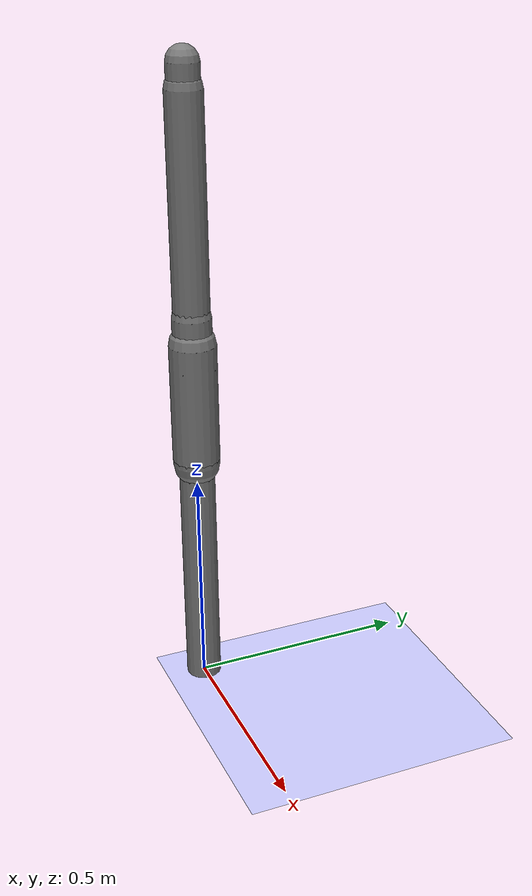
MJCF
<?xml version='1.0' encoding='UTF-8'?>
<mujoco model="robot_model">
  <worldbody>
    <light name="light" pos="0 -3 10" dir="0 0.5 -1" diffuse=".8 .8 .8" specular="0.1 0.1 0.1"/>
    <geom name="floor" type="plane" size="10.0 10.0 0.1" pos="0 0 0" rgba="0.8 0.8 1 1" contype="2" conaffinity="1"/>
    <body name="limb0" pos="0 0 0">
      <geom type="capsule" fromto="0 0 0 0 0 0.6" size="0.04" density="910.5048307913" contype="1" conaffinity="2"/>
      <site type="sphere" size="0.01" name="limb0_site0" pos="0 0 0.3879865204841603"/>
      <freejoint name="limb0_root"/>
      <body name="limb1" pos="0 0 0.3879865204841603">
        <geom type="capsule" fromto="0 0 0 0 0 0.2639757366326131" size="0.03303782304059255" density="616.6153958948047" contype="1" conaffinity="2"/>
        <site type="sphere" size="0.01" name="limb1_site0" pos="0 0 0.16469519644951955"/>
        <site type="sphere" size="0.01" name="limb1_site1" pos="0 0 0.10105994540977413"/>
        <site type="sphere" size="0.01" name="limb1_site2" pos="0 0 0.14621385581581725"/>
        <body name="limb2" pos="0 0 0.16469519644951955">
          <geom type="capsule" fromto="0 0 0 0 0 0.2308883175355425" size="0.0526135099365978" density="745.4449559354061" contype="1" conaffinity="2"/>
          <site type="sphere" size="0.01" name="limb2_site0" pos="0 0 0.012183204894623443"/>
          <site type="sphere" size="0.01" name="limb2_site1" pos="0 0 0.030609505506902012"/>
          <body name="limb3" pos="0 0 0.012183204894623443">
            <geom type="capsule" fromto="0 0 0 0 0 0.2718382711396347" size="0.052967933430587415" density="959.6445780864858" contype="1" conaffinity="2"/>
            <joint name="joint_limb2_limb3_0" type="hinge" axis="0 1 0" range="-53.51127969085405 53.51127969085405" damping="5.0"/>
          </body>
          <body name="limb4" pos="0 0 0.030609505506902012">
            <geom type="capsule" fromto="0 0 0 0 0 0.3159768240312215" size="0.04398226962321314" density="874.9200254675034" contype="1" conaffinity="2"/>
            <joint name="joint_limb2_limb4_0" type="hinge" axis="0 0 1" range="-118.11198317294439 118.11198317294439" damping="5.0"/>
          </body>
          <joint name="joint_limb1_limb2_0" type="hinge" axis="0 1 0" range="-78.8368751691934 78.8368751691934" damping="5.0"/>
        </body>
        <body name="limb5" pos="0 0 0.10105994540977413">
          <geom type="capsule" fromto="0 0 0 0 0 0.44824426173418674" size="0.03801391311606609" density="960.7622558157541" contype="1" conaffinity="2"/>
          <site type="sphere" size="0.01" name="limb5_site0" pos="0 0 0.44824426173418674"/>
          <site type="sphere" size="0.01" name="limb5_site1" pos="0 0 0.25942570694108286"/>
          <site type="sphere" size="0.01" name="limb5_site2" pos="0 0 0.39514419094865066"/>
          <body name="limb6" pos="0 0 0.44824426173418674">
            <geom type="capsule" fromto="0 0 0 0 0 0.5" size="0.03585310670513175" density="832.0613794385891" contype="1" conaffinity="2"/>
            <joint name="joint_limb5_limb6_0" type="hinge" axis="0 1 0" range="-116.04726021765768 116.04726021765768" damping="5.0"/>
          </body>
          <body name="limb7" pos="0 0 0.25942570694108286">
            <geom type="capsule" fromto="0 0 0 0 0 0.2102868528065015" size="0.03451406520881031" density="566.487314585425" contype="1" conaffinity="2"/>
            <joint name="joint_limb5_limb7_0" type="hinge" axis="0 1 0" range="-104.94540138861841 104.94540138861841" damping="5.0"/>
          </body>
          <body name="limb8" pos="0 0 0.39514419094865066">
            <geom type="capsule" fromto="0 0 0 0 0 0.5" size="0.04098013733535133" density="943.1558599901925" contype="1" conaffinity="2"/>
            <joint name="joint_limb5_limb8_0" type="hinge" axis="1 0 0" range="-111.63535672944958 111.63535672944958" damping="5.0"/>
          </body>
          <joint name="joint_limb1_limb5_0" type="hinge" axis="0 1 0" range="-84.37282476408203 84.37282476408203" damping="5.0"/>
        </body>
        <body name="limb9" pos="0 0 0.14621385581581725">
          <geom type="capsule" fromto="0 0 0 0 0 0.25215086514996193" size="0.042933509923616706" density="424.6749137779462" contype="1" conaffinity="2"/>
          <joint name="joint_limb1_limb9_0" type="hinge" axis="0 0 1" range="-74.19033846047556 74.19033846047556" damping="5.0"/>
        </body>
        <joint name="joint_limb0_limb1_0" type="hinge" axis="0 1 0" range="-86.4588262857906 86.4588262857906" damping="5.0"/>
      </body>
    </body>
  </worldbody>
  <actuator>
    <position name="position_actuator_joint_limb0_limb1_0" joint="joint_limb0_limb1_0" gear="1.3528196501497776" inheritrange="1" kp="10.0"/>
    <position name="position_actuator_joint_limb1_limb2_0" joint="joint_limb1_limb2_0" gear="1.320444813612617" inheritrange="1" kp="10.0"/>
    <position name="position_actuator_joint_limb2_limb3_0" joint="joint_limb2_limb3_0" gear="1.5090076720061971" inheritrange="1" kp="10.0"/>
    <position name="position_actuator_joint_limb2_limb4_0" joint="joint_limb2_limb4_0" gear="1.2993474610322076" inheritrange="1" kp="10.0"/>
    <position name="position_actuator_joint_limb1_limb5_0" joint="joint_limb1_limb5_0" gear="2.0" inheritrange="1" kp="10.0"/>
    <position name="position_actuator_joint_limb5_limb6_0" joint="joint_limb5_limb6_0" gear="1.839604132232704" inheritrange="1" kp="10.0"/>
    <position name="position_actuator_joint_limb5_limb7_0" joint="joint_limb5_limb7_0" gear="1.0887960667114218" inheritrange="1" kp="10.0"/>
    <position name="position_actuator_joint_limb5_limb8_0" joint="joint_limb5_limb8_0" gear="1.547309721313042" inheritrange="1" kp="10.0"/>
    <position name="position_actuator_joint_limb1_limb9_0" joint="joint_limb1_limb9_0" gear="1.1880155203111582" inheritrange="1" kp="10.0"/>
  </actuator>
</mujoco>
